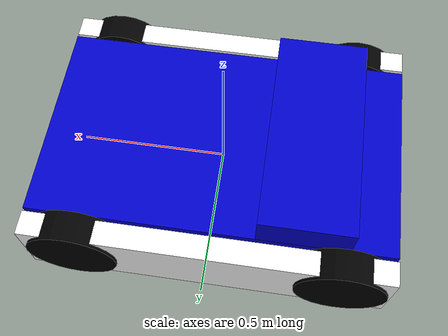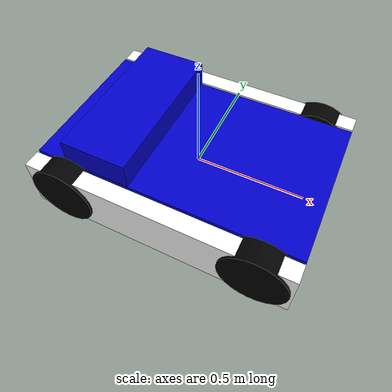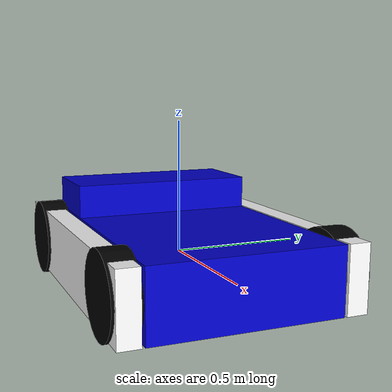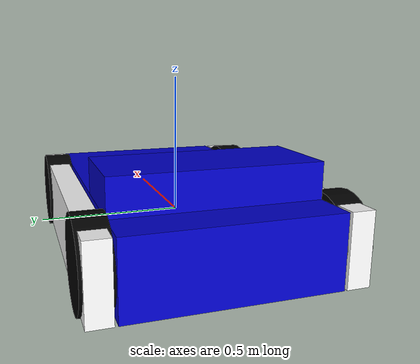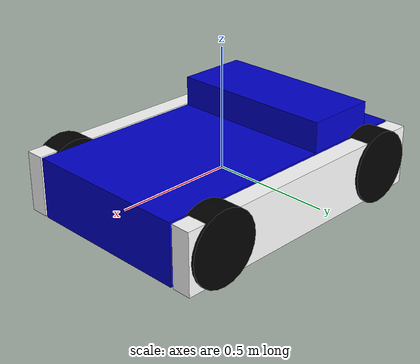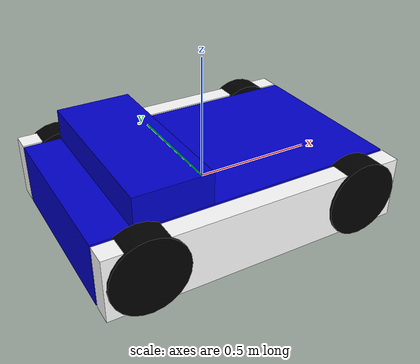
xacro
<?xml version="1.0"?>
<robot name="physics" xmlns:xacro="http://ros.org/wiki/xacro">

  <xacro:arg name="zed_model"    default="zed2"/>

  <xacro:include filename="$(find urdf_tutorial)/urdf/lidar.gazebo.xacro" />

  <xacro:property name="wheeldia" value="0.3" />
  <xacro:property name="wheelwidth" value="0.1" />
  <xacro:property name="bodywidth" value="0.7" />
  <xacro:property name="bodylen" value="1.2" />
  <xacro:property name="bodyheight" value="0.25" />
  <xacro:property name="pi" value="3.1415" />

  <material name="blue">
    <color rgba="0 0 0.8 1"/>
  </material>
  <material name="black">
    <color rgba="0 0 0 1"/>
  </material>
  <material name="white">
    <color rgba="1 1 1 1"/>
  </material>

  <xacro:macro name="default_inertial" params="mass">
    <inertial>
      <mass value="${mass}"/>
      <inertia ixx="1.0" ixy="0.0" ixz="0.0" iyy="1.0" iyz="0.0" izz="1.0" />
    </inertial>
  </xacro:macro>
  <xacro:lidar_gazebo />

  <link name="base_link">
    <visual>
      <geometry>
        <box size="${bodylen} ${bodywidth} ${bodyheight}"/>
      </geometry>
      <material name="blue"/>
    </visual>
    <collision>
      <geometry>
        <box size="${bodylen} ${bodywidth} ${bodyheight}"/>
      </geometry>
    </collision>
    <xacro:default_inertial mass="20"/>
  </link>

  <xacro:macro name="wheel" params="prefix suffix reflect">

    <link name="${prefix}_${suffix}_wheel">
      <visual>
        <origin xyz="0 0 0" rpy="${pi/2} 0 0" />
        <geometry>
          <cylinder radius="${wheeldia/2}" length="0.1"/>
        </geometry>
        <material name="black"/>
      </visual>
      <collision>
        <origin xyz="0 0 0" rpy="${pi/2} 0 0" />
        <geometry>
          <cylinder radius="${wheeldia/2}" length="0.1"/>
        </geometry>
      </collision>
      <xacro:default_inertial mass="2"/>
    </link>

    <joint name="${prefix}_${suffix}_wheel_joint" type="continuous">
      <axis xyz="0 1 0" rpy="0 0 0" />
      <parent link="${prefix}_leg"/>
      <child link="${prefix}_${suffix}_wheel"/>
      <origin xyz="${reflect*(bodylen/2-0.16)} 0 0" rpy="0 0 0"/>
    </joint>
<!-- This block provides the simulator (Gazebo) with information on a few additional
    physical properties. See http://gazebosim.org/tutorials/?tut=ros_urdf for more-->
    <gazebo reference="${prefix}_${suffix}_wheel">
      <mu1 value="200.0"/>
      <mu2 value="100.0"/>
      <kp value="10000000.0" />
      <kd value="1.0" />
      <material>Gazebo/Grey</material>
    </gazebo>
    <!-- This block connects the wheel joint to an actuator (motor), which informs both
    simulation and visualization of the robot -->
    <transmission name="${prefix}_${suffix}_wheel_trans">
      <type>transmission_interface/SimpleTransmission</type>
      <actuator name="${prefix}_${suffix}_wheel_motor">
        <mechanicalReduction>1</mechanicalReduction>
      </actuator>
      <joint name="${prefix}_${suffix}_wheel_joint">
        <hardwareInterface>VelocityJointInterface</hardwareInterface>
      </joint>
    </transmission>
  </xacro:macro>

  <xacro:macro name="leg" params="prefix reflect">
    <link name="${prefix}_leg">
      <visual>
        <geometry>
          <box size="${bodylen} 0.08 ${bodyheight}"/>
        </geometry>
        <origin xyz="0 0 0" rpy="0 0 0"/>
        <material name="white"/>
      </visual>
      <collision>
        <geometry>
          <box size="${bodylen} 0.08 ${bodyheight}"/>
        </geometry>
        <origin xyz="0 0 0" rpy="0 0 0"/>
      </collision>
      <xacro:default_inertial mass="3"/>
    </link>

    <joint name="base_to_${prefix}_leg" type="fixed">
      <parent link="base_link"/>
      <child link="${prefix}_leg"/>
      <origin xyz="0 ${reflect*(bodywidth-0.3)} 0" />
    </joint>

    <xacro:wheel prefix="${prefix}" suffix="front" reflect="1"/>
    <xacro:wheel prefix="${prefix}" suffix="back" reflect="-1"/>
  </xacro:macro>
  <xacro:leg prefix="right" reflect="-1" />
  <xacro:leg prefix="left" reflect="1" />

  <link name="head">
    <visual>
      <geometry>
        <box size="${bodylen/4} ${bodywidth} ${bodyheight/2}"/>
      </geometry>
      <material name="blue"/>
    </visual>
    <collision>
      <geometry>
        <box size="${bodylen/4} ${bodywidth} ${bodyheight}"/>
      </geometry>
    </collision>
    <xacro:default_inertial mass="5"/>
  </link>

  <joint name="head_joint" type="fixed">
    <axis rpy="0 0 0" xyz="1 0 0"/>
    <parent link="base_link"/>
    <child link="head"/>
   <origin rpy="0 0 0" xyz="${-bodylen/4} 0 ${bodyheight*0.75}"/>
  </joint>

  <gazebo>
    <plugin name="gazebo_ros_control" filename="libgazebo_ros_control.so">
      <robotNamespace>/</robotNamespace>
    </plugin>
  </gazebo>

</robot>
